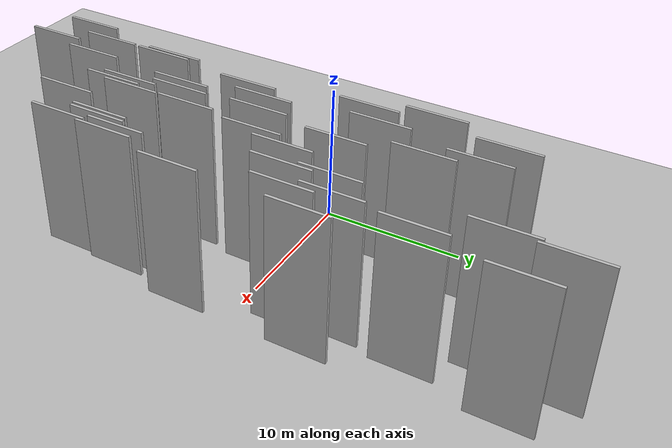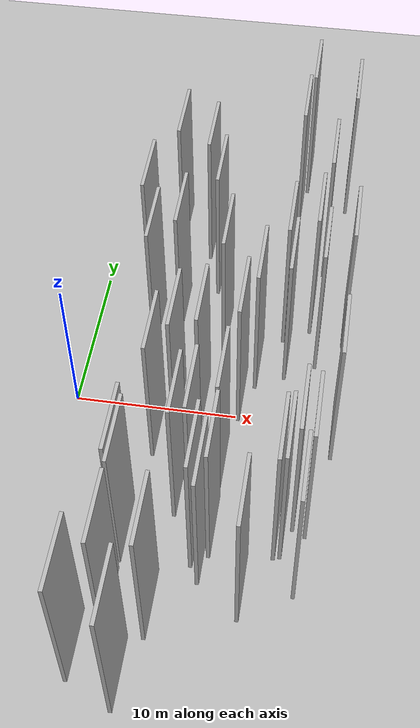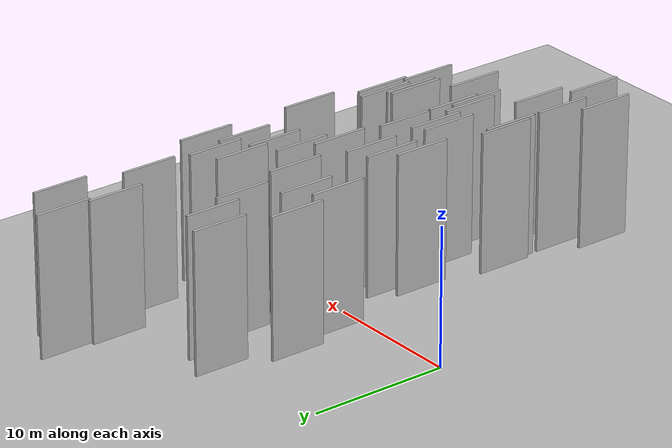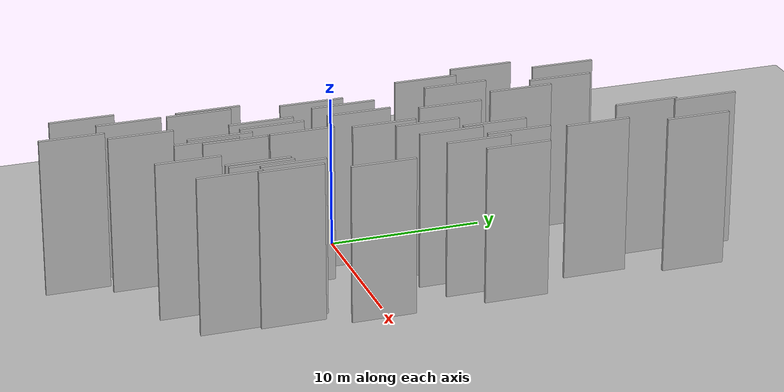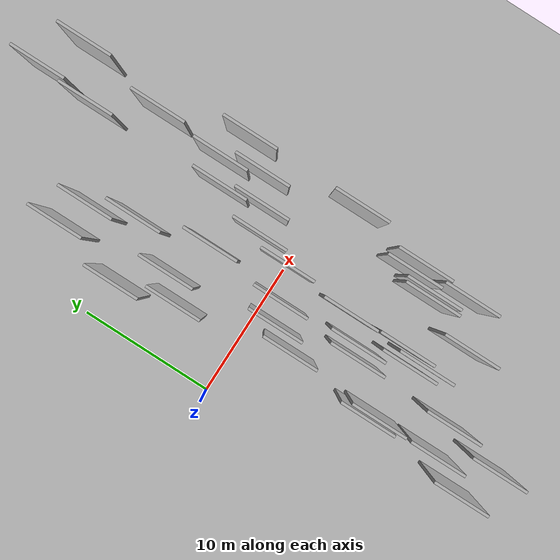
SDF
<?xml version="1.0" encoding="utf-8"?>

<sdf version="1.6">

   <world name="default">

      <gui fullscreen="0">

         <camera name="user_camera">

            <pose>-15 0 4.57585 0 0 0</pose>

            <view_controller>orbit</view_controller>

         </camera>

      </gui>

      <scene>

         <sky>

           <clouds>

             <speed>12</speed>

           </clouds>

         </sky>

         <ambient>0.4 0.4 0.4 1</ambient>

         <background>0.7 0.7 0.7 1</background>

         <shadows>1</shadows>

      </scene>

      <gravity>0 0 -9.8066</gravity>

      <magnetic_field>6e-06 2.3e-05 -4.2e-05</magnetic_field>

      <physics default="0" name="default_physics" type="ode">

         <ode>

            <solver>

               <type>quick</type>

               <iters>10</iters>

               <sor>1.0</sor>

               <use_dynamic_moi_rescaling>0</use_dynamic_moi_rescaling>

            </solver>

            <constraints>

               <cfm>0</cfm>

               <erp>0.2</erp>

               <contact_max_correcting_vel>100</contact_max_correcting_vel>

               <contact_surface_layer>0.001</contact_surface_layer>

            </constraints>

         </ode>

         <max_step_size>0.004</max_step_size>

         <real_time_factor>1</real_time_factor>

         <real_time_update_rate>250</real_time_update_rate>

      </physics>

      <light name="sun" type="directional">

         <cast_shadows>1</cast_shadows>

         <pose>0 0 10 0 0 0</pose>

         <diffuse>0.8 0.8 0.8 1</diffuse>

         <specular>0.2 0.2 0.2 1</specular>

         <attenuation>

            <range>1000</range>

            <constant>0.9</constant>

            <linear>0.01</linear>

            <quadratic>0.001</quadratic>

         </attenuation>

         <direction>-0.5 0.1 -0.9</direction>

      </light>

      <include>

         <name>ground_plane_1</name>

         <uri>model://HANNAS_ground_plane</uri>

         <pose>0 0 0  0 0 0</pose>

      </include>

      <include>

         <name>ground_plane_2</name>

         <uri>model://HANNAS_ground_plane</uri>

         <pose>100 0 0  0 0 0</pose>

      </include>

      <model name="HANNAS_wall_1">

         <static>1</static>

         <pose frame="">4.4890 4.7480 2.5 0.000000 0.000000 1.570796</pose>

         <link name="link">

            <pose frame="">0 0 5.00 0 0 0</pose>

            <collision name="collision">

               <geometry>

                  <box>

                     <size>4.00 0.2 10.00</size>

                  </box>

               </geometry>

               <max_contacts>10</max_contacts>

               <surface>

                  <contact>

                     <ode/>

                  </contact>

                  <bounce/>

                  <friction>

                     <torsional>

                        <ode/>

                     </torsional>

                     <ode/>

                  </friction>

               </surface>

            </collision>

            <visual name="visual">

               <cast_shadows>0</cast_shadows>

               <geometry>

                  <box>

                     <size>4.00 0.2 10.00</size>

                  </box>

               </geometry>

               <material>

                  <script>

                     <uri>model://HANNAS_wall/materials/scripts</uri>

                     <uri>model://HANNAS_wall/materials/textures</uri>

                     <name>vrc/HANNAS_wall</name>

                  </script>

               </material>

            </visual>

            <self_collide>0</self_collide>

            <enable_wind>0</enable_wind>

            <kinematic>0</kinematic>

         </link>

      </model>

      <model name="HANNAS_wall_2">

         <static>1</static>

         <pose frame="">5.8138 -3.0721 2.5 0.000000 0.000000 1.570796</pose>

         <link name="link">

            <pose frame="">0 0 5.00 0 0 0</pose>

            <collision name="collision">

               <geometry>

                  <box>

                     <size>4.00 0.2 10.00</size>

                  </box>

               </geometry>

               <max_contacts>10</max_contacts>

               <surface>

                  <contact>

                     <ode/>

                  </contact>

                  <bounce/>

                  <friction>

                     <torsional>

                        <ode/>

                     </torsional>

                     <ode/>

                  </friction>

               </surface>

            </collision>

            <visual name="visual">

               <cast_shadows>0</cast_shadows>

               <geometry>

                  <box>

                     <size>4.00 0.2 10.00</size>

                  </box>

               </geometry>

               <material>

                  <script>

                     <uri>model://HANNAS_wall/materials/scripts</uri>

                     <uri>model://HANNAS_wall/materials/textures</uri>

                     <name>vrc/HANNAS_wall</name>

                  </script>

               </material>

            </visual>

            <self_collide>0</self_collide>

            <enable_wind>0</enable_wind>

            <kinematic>0</kinematic>

         </link>

      </model>

      <model name="HANNAS_wall_3">

         <static>1</static>

         <pose frame="">14.3263 -6.8433 2.5 0.000000 0.000000 1.570796</pose>

         <link name="link">

            <pose frame="">0 0 5.00 0 0 0</pose>

            <collision name="collision">

               <geometry>

                  <box>

                     <size>4.00 0.2 10.00</size>

                  </box>

               </geometry>

               <max_contacts>10</max_contacts>

               <surface>

                  <contact>

                     <ode/>

                  </contact>

                  <bounce/>

                  <friction>

                     <torsional>

                        <ode/>

                     </torsional>

                     <ode/>

                  </friction>

               </surface>

            </collision>

            <visual name="visual">

               <cast_shadows>0</cast_shadows>

               <geometry>

                  <box>

                     <size>4.00 0.2 10.00</size>

                  </box>

               </geometry>

               <material>

                  <script>

                     <uri>model://HANNAS_wall/materials/scripts</uri>

                     <uri>model://HANNAS_wall/materials/textures</uri>

                     <name>vrc/HANNAS_wall</name>

                  </script>

               </material>

            </visual>

            <self_collide>0</self_collide>

            <enable_wind>0</enable_wind>

            <kinematic>0</kinematic>

         </link>

      </model>

      <model name="HANNAS_wall_4">

         <static>1</static>

         <pose frame="">6.8269 12.7532 2.5 0.000000 0.000000 1.570796</pose>

         <link name="link">

            <pose frame="">0 0 5.00 0 0 0</pose>

            <collision name="collision">

               <geometry>

                  <box>

                     <size>4.00 0.2 10.00</size>

                  </box>

               </geometry>

               <max_contacts>10</max_contacts>

               <surface>

                  <contact>

                     <ode/>

                  </contact>

                  <bounce/>

                  <friction>

                     <torsional>

                        <ode/>

                     </torsional>

                     <ode/>

                  </friction>

               </surface>

            </collision>

            <visual name="visual">

               <cast_shadows>0</cast_shadows>

               <geometry>

                  <box>

                     <size>4.00 0.2 10.00</size>

                  </box>

               </geometry>

               <material>

                  <script>

                     <uri>model://HANNAS_wall/materials/scripts</uri>

                     <uri>model://HANNAS_wall/materials/textures</uri>

                     <name>vrc/HANNAS_wall</name>

                  </script>

               </material>

            </visual>

            <self_collide>0</self_collide>

            <enable_wind>0</enable_wind>

            <kinematic>0</kinematic>

         </link>

      </model>

      <model name="HANNAS_wall_5">

         <static>1</static>

         <pose frame="">5.8905 6.1827 2.5 0.000000 0.000000 1.570796</pose>

         <link name="link">

            <pose frame="">0 0 5.00 0 0 0</pose>

            <collision name="collision">

               <geometry>

                  <box>

                     <size>4.00 0.2 10.00</size>

                  </box>

               </geometry>

               <max_contacts>10</max_contacts>

               <surface>

                  <contact>

                     <ode/>

                  </contact>

                  <bounce/>

                  <friction>

                     <torsional>

                        <ode/>

                     </torsional>

                     <ode/>

                  </friction>

               </surface>

            </collision>

            <visual name="visual">

               <cast_shadows>0</cast_shadows>

               <geometry>

                  <box>

                     <size>4.00 0.2 10.00</size>

                  </box>

               </geometry>

               <material>

                  <script>

                     <uri>model://HANNAS_wall/materials/scripts</uri>

                     <uri>model://HANNAS_wall/materials/textures</uri>

                     <name>vrc/HANNAS_wall</name>

                  </script>

               </material>

            </visual>

            <self_collide>0</self_collide>

            <enable_wind>0</enable_wind>

            <kinematic>0</kinematic>

         </link>

      </model>

      <model name="HANNAS_wall_6">

         <static>1</static>

         <pose frame="">11.0642 2.5485 2.5 0.000000 0.000000 1.570796</pose>

         <link name="link">

            <pose frame="">0 0 5.00 0 0 0</pose>

            <collision name="collision">

               <geometry>

                  <box>

                     <size>4.00 0.2 10.00</size>

                  </box>

               </geometry>

               <max_contacts>10</max_contacts>

               <surface>

                  <contact>

                     <ode/>

                  </contact>

                  <bounce/>

                  <friction>

                     <torsional>

                        <ode/>

                     </torsional>

                     <ode/>

                  </friction>

               </surface>

            </collision>

            <visual name="visual">

               <cast_shadows>0</cast_shadows>

               <geometry>

                  <box>

                     <size>4.00 0.2 10.00</size>

                  </box>

               </geometry>

               <material>

                  <script>

                     <uri>model://HANNAS_wall/materials/scripts</uri>

                     <uri>model://HANNAS_wall/materials/textures</uri>

                     <name>vrc/HANNAS_wall</name>

                  </script>

               </material>

            </visual>

            <self_collide>0</self_collide>

            <enable_wind>0</enable_wind>

            <kinematic>0</kinematic>

         </link>

      </model>

      <model name="HANNAS_wall_7">

         <static>1</static>

         <pose frame="">7.4055 -14.1734 2.5 0.000000 0.000000 1.570796</pose>

         <link name="link">

            <pose frame="">0 0 5.00 0 0 0</pose>

            <collision name="collision">

               <geometry>

                  <box>

                     <size>4.00 0.2 10.00</size>

                  </box>

               </geometry>

               <max_contacts>10</max_contacts>

               <surface>

                  <contact>

                     <ode/>

                  </contact>

                  <bounce/>

                  <friction>

                     <torsional>

                        <ode/>

                     </torsional>

                     <ode/>

                  </friction>

               </surface>

            </collision>

            <visual name="visual">

               <cast_shadows>0</cast_shadows>

               <geometry>

                  <box>

                     <size>4.00 0.2 10.00</size>

                  </box>

               </geometry>

               <material>

                  <script>

                     <uri>model://HANNAS_wall/materials/scripts</uri>

                     <uri>model://HANNAS_wall/materials/textures</uri>

                     <name>vrc/HANNAS_wall</name>

                  </script>

               </material>

            </visual>

            <self_collide>0</self_collide>

            <enable_wind>0</enable_wind>

            <kinematic>0</kinematic>

         </link>

      </model>

      <model name="HANNAS_wall_8">

         <static>1</static>

         <pose frame="">4.8230 13.7067 2.5 0.000000 0.000000 1.570796</pose>

         <link name="link">

            <pose frame="">0 0 5.00 0 0 0</pose>

            <collision name="collision">

               <geometry>

                  <box>

                     <size>4.00 0.2 10.00</size>

                  </box>

               </geometry>

               <max_contacts>10</max_contacts>

               <surface>

                  <contact>

                     <ode/>

                  </contact>

                  <bounce/>

                  <friction>

                     <torsional>

                        <ode/>

                     </torsional>

                     <ode/>

                  </friction>

               </surface>

            </collision>

            <visual name="visual">

               <cast_shadows>0</cast_shadows>

               <geometry>

                  <box>

                     <size>4.00 0.2 10.00</size>

                  </box>

               </geometry>

               <material>

                  <script>

                     <uri>model://HANNAS_wall/materials/scripts</uri>

                     <uri>model://HANNAS_wall/materials/textures</uri>

                     <name>vrc/HANNAS_wall</name>

                  </script>

               </material>

            </visual>

            <self_collide>0</self_collide>

            <enable_wind>0</enable_wind>

            <kinematic>0</kinematic>

         </link>

      </model>

      <model name="HANNAS_wall_9">

         <static>1</static>

         <pose frame="">9.6446 -10.7321 2.5 0.000000 0.000000 1.570796</pose>

         <link name="link">

            <pose frame="">0 0 5.00 0 0 0</pose>

            <collision name="collision">

               <geometry>

                  <box>

                     <size>4.00 0.2 10.00</size>

                  </box>

               </geometry>

               <max_contacts>10</max_contacts>

               <surface>

                  <contact>

                     <ode/>

                  </contact>

                  <bounce/>

                  <friction>

                     <torsional>

                        <ode/>

                     </torsional>

                     <ode/>

                  </friction>

               </surface>

            </collision>

            <visual name="visual">

               <cast_shadows>0</cast_shadows>

               <geometry>

                  <box>

                     <size>4.00 0.2 10.00</size>

                  </box>

               </geometry>

               <material>

                  <script>

                     <uri>model://HANNAS_wall/materials/scripts</uri>

                     <uri>model://HANNAS_wall/materials/textures</uri>

                     <name>vrc/HANNAS_wall</name>

                  </script>

               </material>

            </visual>

            <self_collide>0</self_collide>

            <enable_wind>0</enable_wind>

            <kinematic>0</kinematic>

         </link>

      </model>

      <model name="HANNAS_wall_10">

         <static>1</static>

         <pose frame="">13.9346 7.2970 2.5 0.000000 0.000000 1.570796</pose>

         <link name="link">

            <pose frame="">0 0 5.00 0 0 0</pose>

            <collision name="collision">

               <geometry>

                  <box>

                     <size>4.00 0.2 10.00</size>

                  </box>

               </geometry>

               <max_contacts>10</max_contacts>

               <surface>

                  <contact>

                     <ode/>

                  </contact>

                  <bounce/>

                  <friction>

                     <torsional>

                        <ode/>

                     </torsional>

                     <ode/>

                  </friction>

               </surface>

            </collision>

            <visual name="visual">

               <cast_shadows>0</cast_shadows>

               <geometry>

                  <box>

                     <size>4.00 0.2 10.00</size>

                  </box>

               </geometry>

               <material>

                  <script>

                     <uri>model://HANNAS_wall/materials/scripts</uri>

                     <uri>model://HANNAS_wall/materials/textures</uri>

                     <name>vrc/HANNAS_wall</name>

                  </script>

               </material>

            </visual>

            <self_collide>0</self_collide>

            <enable_wind>0</enable_wind>

            <kinematic>0</kinematic>

         </link>

      </model>

      <model name="HANNAS_wall_11">

         <static>1</static>

         <pose frame="">5.2571 -14.3523 2.5 0.000000 0.000000 1.570796</pose>

         <link name="link">

            <pose frame="">0 0 5.00 0 0 0</pose>

            <collision name="collision">

               <geometry>

                  <box>

                     <size>4.00 0.2 10.00</size>

                  </box>

               </geometry>

               <max_contacts>10</max_contacts>

               <surface>

                  <contact>

                     <ode/>

                  </contact>

                  <bounce/>

                  <friction>

                     <torsional>

                        <ode/>

                     </torsional>

                     <ode/>

                  </friction>

               </surface>

            </collision>

            <visual name="visual">

               <cast_shadows>0</cast_shadows>

               <geometry>

                  <box>

                     <size>4.00 0.2 10.00</size>

                  </box>

               </geometry>

               <material>

                  <script>

                     <uri>model://HANNAS_wall/materials/scripts</uri>

                     <uri>model://HANNAS_wall/materials/textures</uri>

                     <name>vrc/HANNAS_wall</name>

                  </script>

               </material>

            </visual>

            <self_collide>0</self_collide>

            <enable_wind>0</enable_wind>

            <kinematic>0</kinematic>

         </link>

      </model>

      <model name="HANNAS_wall_12">

         <static>1</static>

         <pose frame="">12.3624 6.3493 2.5 0.000000 0.000000 1.570796</pose>

         <link name="link">

            <pose frame="">0 0 5.00 0 0 0</pose>

            <collision name="collision">

               <geometry>

                  <box>

                     <size>4.00 0.2 10.00</size>

                  </box>

               </geometry>

               <max_contacts>10</max_contacts>

               <surface>

                  <contact>

                     <ode/>

                  </contact>

                  <bounce/>

                  <friction>

                     <torsional>

                        <ode/>

                     </torsional>

                     <ode/>

                  </friction>

               </surface>

            </collision>

            <visual name="visual">

               <cast_shadows>0</cast_shadows>

               <geometry>

                  <box>

                     <size>4.00 0.2 10.00</size>

                  </box>

               </geometry>

               <material>

                  <script>

                     <uri>model://HANNAS_wall/materials/scripts</uri>

                     <uri>model://HANNAS_wall/materials/textures</uri>

                     <name>vrc/HANNAS_wall</name>

                  </script>

               </material>

            </visual>

            <self_collide>0</self_collide>

            <enable_wind>0</enable_wind>

            <kinematic>0</kinematic>

         </link>

      </model>

      <model name="HANNAS_wall_13">

         <static>1</static>

         <pose frame="">12.0133 -12.5285 2.5 0.000000 0.000000 1.570796</pose>

         <link name="link">

            <pose frame="">0 0 5.00 0 0 0</pose>

            <collision name="collision">

               <geometry>

                  <box>

                     <size>4.00 0.2 10.00</size>

                  </box>

               </geometry>

               <max_contacts>10</max_contacts>

               <surface>

                  <contact>

                     <ode/>

                  </contact>

                  <bounce/>

                  <friction>

                     <torsional>

                        <ode/>

                     </torsional>

                     <ode/>

                  </friction>

               </surface>

            </collision>

            <visual name="visual">

               <cast_shadows>0</cast_shadows>

               <geometry>

                  <box>

                     <size>4.00 0.2 10.00</size>

                  </box>

               </geometry>

               <material>

                  <script>

                     <uri>model://HANNAS_wall/materials/scripts</uri>

                     <uri>model://HANNAS_wall/materials/textures</uri>

                     <name>vrc/HANNAS_wall</name>

                  </script>

               </material>

            </visual>

            <self_collide>0</self_collide>

            <enable_wind>0</enable_wind>

            <kinematic>0</kinematic>

         </link>

      </model>

      <model name="HANNAS_wall_14">

         <static>1</static>

         <pose frame="">14.5094 4.5498 2.5 0.000000 0.000000 1.570796</pose>

         <link name="link">

            <pose frame="">0 0 5.00 0 0 0</pose>

            <collision name="collision">

               <geometry>

                  <box>

                     <size>4.00 0.2 10.00</size>

                  </box>

               </geometry>

               <max_contacts>10</max_contacts>

               <surface>

                  <contact>

                     <ode/>

                  </contact>

                  <bounce/>

                  <friction>

                     <torsional>

                        <ode/>

                     </torsional>

                     <ode/>

                  </friction>

               </surface>

            </collision>

            <visual name="visual">

               <cast_shadows>0</cast_shadows>

               <geometry>

                  <box>

                     <size>4.00 0.2 10.00</size>

                  </box>

               </geometry>

               <material>

                  <script>

                     <uri>model://HANNAS_wall/materials/scripts</uri>

                     <uri>model://HANNAS_wall/materials/textures</uri>

                     <name>vrc/HANNAS_wall</name>

                  </script>

               </material>

            </visual>

            <self_collide>0</self_collide>

            <enable_wind>0</enable_wind>

            <kinematic>0</kinematic>

         </link>

      </model>

      <model name="HANNAS_wall_15">

         <static>1</static>

         <pose frame="">16.0511 6.4566 2.5 0.000000 0.000000 1.570796</pose>

         <link name="link">

            <pose frame="">0 0 5.00 0 0 0</pose>

            <collision name="collision">

               <geometry>

                  <box>

                     <size>4.00 0.2 10.00</size>

                  </box>

               </geometry>

               <max_contacts>10</max_contacts>

               <surface>

                  <contact>

                     <ode/>

                  </contact>

                  <bounce/>

                  <friction>

                     <torsional>

                        <ode/>

                     </torsional>

                     <ode/>

                  </friction>

               </surface>

            </collision>

            <visual name="visual">

               <cast_shadows>0</cast_shadows>

               <geometry>

                  <box>

                     <size>4.00 0.2 10.00</size>

                  </box>

               </geometry>

               <material>

                  <script>

                     <uri>model://HANNAS_wall/materials/scripts</uri>

                     <uri>model://HANNAS_wall/materials/textures</uri>

                     <name>vrc/HANNAS_wall</name>

                  </script>

               </material>

            </visual>

            <self_collide>0</self_collide>

            <enable_wind>0</enable_wind>

            <kinematic>0</kinematic>

         </link>

      </model>

      <model name="HANNAS_wall_16">

         <static>1</static>

         <pose frame="">6.4888 -18.1323 2.5 0.000000 0.000000 1.570796</pose>

         <link name="link">

            <pose frame="">0 0 5.00 0 0 0</pose>

            <collision name="collision">

               <geometry>

                  <box>

                     <size>4.00 0.2 10.00</size>

                  </box>

               </geometry>

               <max_contacts>10</max_contacts>

               <surface>

                  <contact>

                     <ode/>

                  </contact>

                  <bounce/>

                  <friction>

                     <torsional>

                        <ode/>

                     </torsional>

                     <ode/>

                  </friction>

               </surface>

            </collision>

            <visual name="visual">

               <cast_shadows>0</cast_shadows>

               <geometry>

                  <box>

                     <size>4.00 0.2 10.00</size>

                  </box>

               </geometry>

               <material>

                  <script>

                     <uri>model://HANNAS_wall/materials/scripts</uri>

                     <uri>model://HANNAS_wall/materials/textures</uri>

                     <name>vrc/HANNAS_wall</name>

                  </script>

               </material>

            </visual>

            <self_collide>0</self_collide>

            <enable_wind>0</enable_wind>

            <kinematic>0</kinematic>

         </link>

      </model>

      <model name="HANNAS_wall_17">

         <static>1</static>

         <pose frame="">3.5200 8.7308 2.5 0.000000 0.000000 1.570796</pose>

         <link name="link">

            <pose frame="">0 0 5.00 0 0 0</pose>

            <collision name="collision">

               <geometry>

                  <box>

                     <size>4.00 0.2 10.00</size>

                  </box>

               </geometry>

               <max_contacts>10</max_contacts>

               <surface>

                  <contact>

                     <ode/>

                  </contact>

                  <bounce/>

                  <friction>

                     <torsional>

                        <ode/>

                     </torsional>

                     <ode/>

                  </friction>

               </surface>

            </collision>

            <visual name="visual">

               <cast_shadows>0</cast_shadows>

               <geometry>

                  <box>

                     <size>4.00 0.2 10.00</size>

                  </box>

               </geometry>

               <material>

                  <script>

                     <uri>model://HANNAS_wall/materials/scripts</uri>

                     <uri>model://HANNAS_wall/materials/textures</uri>

                     <name>vrc/HANNAS_wall</name>

                  </script>

               </material>

            </visual>

            <self_collide>0</self_collide>

            <enable_wind>0</enable_wind>

            <kinematic>0</kinematic>

         </link>

      </model>

      <model name="HANNAS_wall_18">

         <static>1</static>

         <pose frame="">14.7701 -10.8193 2.5 0.000000 0.000000 1.570796</pose>

         <link name="link">

            <pose frame="">0 0 5.00 0 0 0</pose>

            <collision name="collision">

               <geometry>

                  <box>

                     <size>4.00 0.2 10.00</size>

                  </box>

               </geometry>

               <max_contacts>10</max_contacts>

               <surface>

                  <contact>

                     <ode/>

                  </contact>

                  <bounce/>

                  <friction>

                     <torsional>

                        <ode/>

                     </torsional>

                     <ode/>

                  </friction>

               </surface>

            </collision>

            <visual name="visual">

               <cast_shadows>0</cast_shadows>

               <geometry>

                  <box>

                     <size>4.00 0.2 10.00</size>

                  </box>

               </geometry>

               <material>

                  <script>

                     <uri>model://HANNAS_wall/materials/scripts</uri>

                     <uri>model://HANNAS_wall/materials/textures</uri>

                     <name>vrc/HANNAS_wall</name>

                  </script>

               </material>

            </visual>

            <self_collide>0</self_collide>

            <enable_wind>0</enable_wind>

            <kinematic>0</kinematic>

         </link>

      </model>

      <model name="HANNAS_wall_19">

         <static>1</static>

         <pose frame="">13.4697 -8.7221 2.5 0.000000 0.000000 1.570796</pose>

         <link name="link">

            <pose frame="">0 0 5.00 0 0 0</pose>

            <collision name="collision">

               <geometry>

                  <box>

                     <size>4.00 0.2 10.00</size>

                  </box>

               </geometry>

               <max_contacts>10</max_contacts>

               <surface>

                  <contact>

                     <ode/>

                  </contact>

                  <bounce/>

                  <friction>

                     <torsional>

                        <ode/>

                     </torsional>

                     <ode/>

                  </friction>

               </surface>

            </collision>

            <visual name="visual">

               <cast_shadows>0</cast_shadows>

               <geometry>

                  <box>

                     <size>4.00 0.2 10.00</size>

                  </box>

               </geometry>

               <material>

                  <script>

                     <uri>model://HANNAS_wall/materials/scripts</uri>

                     <uri>model://HANNAS_wall/materials/textures</uri>

                     <name>vrc/HANNAS_wall</name>

                  </script>

               </material>

            </visual>

            <self_collide>0</self_collide>

            <enable_wind>0</enable_wind>

            <kinematic>0</kinematic>

         </link>

      </model>

      <model name="HANNAS_wall_20">

         <static>1</static>

         <pose frame="">7.7355 -6.8318 2.5 0.000000 0.000000 1.570796</pose>

         <link name="link">

            <pose frame="">0 0 5.00 0 0 0</pose>

            <collision name="collision">

               <geometry>

                  <box>

                     <size>4.00 0.2 10.00</size>

                  </box>

               </geometry>

               <max_contacts>10</max_contacts>

               <surface>

                  <contact>

                     <ode/>

                  </contact>

                  <bounce/>

                  <friction>

                     <torsional>

                        <ode/>

                     </torsional>

                     <ode/>

                  </friction>

               </surface>

            </collision>

            <visual name="visual">

               <cast_shadows>0</cast_shadows>

               <geometry>

                  <box>

                     <size>4.00 0.2 10.00</size>

                  </box>

               </geometry>

               <material>

                  <script>

                     <uri>model://HANNAS_wall/materials/scripts</uri>

                     <uri>model://HANNAS_wall/materials/textures</uri>

                     <name>vrc/HANNAS_wall</name>

                  </script>

               </material>

            </visual>

            <self_collide>0</self_collide>

            <enable_wind>0</enable_wind>

            <kinematic>0</kinematic>

         </link>

      </model>

      <model name="HANNAS_wall_21">

         <static>1</static>

         <pose frame="">3.9329 -16.9139 2.5 0.000000 0.000000 1.570796</pose>

         <link name="link">

            <pose frame="">0 0 5.00 0 0 0</pose>

            <collision name="collision">

               <geometry>

                  <box>

                     <size>4.00 0.2 10.00</size>

                  </box>

               </geometry>

               <max_contacts>10</max_contacts>

               <surface>

                  <contact>

                     <ode/>

                  </contact>

                  <bounce/>

                  <friction>

                     <torsional>

                        <ode/>

                     </torsional>

                     <ode/>

                  </friction>

               </surface>

            </collision>

            <visual name="visual">

               <cast_shadows>0</cast_shadows>

               <geometry>

                  <box>

                     <size>4.00 0.2 10.00</size>

                  </box>

               </geometry>

               <material>

                  <script>

                     <uri>model://HANNAS_wall/materials/scripts</uri>

                     <uri>model://HANNAS_wall/materials/textures</uri>

                     <name>vrc/HANNAS_wall</name>

                  </script>

               </material>

            </visual>

            <self_collide>0</self_collide>

            <enable_wind>0</enable_wind>

            <kinematic>0</kinematic>

         </link>

      </model>

      <model name="HANNAS_wall_22">

         <static>1</static>

         <pose frame="">9.9276 -4.9561 2.5 0.000000 0.000000 1.570796</pose>

         <link name="link">

            <pose frame="">0 0 5.00 0 0 0</pose>

            <collision name="collision">

               <geometry>

                  <box>

                     <size>4.00 0.2 10.00</size>

                  </box>

               </geometry>

               <max_contacts>10</max_contacts>

               <surface>

                  <contact>

                     <ode/>

                  </contact>

                  <bounce/>

                  <friction>

                     <torsional>

                        <ode/>

                     </torsional>

                     <ode/>

                  </friction>

               </surface>

            </collision>

            <visual name="visual">

               <cast_shadows>0</cast_shadows>

               <geometry>

                  <box>

                     <size>4.00 0.2 10.00</size>

                  </box>

               </geometry>

               <material>

                  <script>

                     <uri>model://HANNAS_wall/materials/scripts</uri>

                     <uri>model://HANNAS_wall/materials/textures</uri>

                     <name>vrc/HANNAS_wall</name>

                  </script>

               </material>

            </visual>

            <self_collide>0</self_collide>

            <enable_wind>0</enable_wind>

            <kinematic>0</kinematic>

         </link>

      </model>

      <model name="HANNAS_wall_23">

         <static>1</static>

         <pose frame="">8.8322 4.7874 2.5 0.000000 0.000000 1.570796</pose>

         <link name="link">

            <pose frame="">0 0 5.00 0 0 0</pose>

            <collision name="collision">

               <geometry>

                  <box>

                     <size>4.00 0.2 10.00</size>

                  </box>

               </geometry>

               <max_contacts>10</max_contacts>

               <surface>

                  <contact>

                     <ode/>

                  </contact>

                  <bounce/>

                  <friction>

                     <torsional>

                        <ode/>

                     </torsional>

                     <ode/>

                  </friction>

               </surface>

            </collision>

            <visual name="visual">

               <cast_shadows>0</cast_shadows>

               <geometry>

                  <box>

                     <size>4.00 0.2 10.00</size>

                  </box>

               </geometry>

               <material>

                  <script>

                     <uri>model://HANNAS_wall/materials/scripts</uri>

                     <uri>model://HANNAS_wall/materials/textures</uri>

                     <name>vrc/HANNAS_wall</name>

                  </script>

               </material>

            </visual>

            <self_collide>0</self_collide>

            <enable_wind>0</enable_wind>

            <kinematic>0</kinematic>

         </link>

      </model>

      <model name="HANNAS_wall_24">

         <static>1</static>

         <pose frame="">7.7628 9.7902 2.5 0.000000 0.000000 1.570796</pose>

         <link name="link">

            <pose frame="">0 0 5.00 0 0 0</pose>

            <collision name="collision">

               <geometry>

                  <box>

                     <size>4.00 0.2 10.00</size>

                  </box>

               </geometry>

               <max_contacts>10</max_contacts>

               <surface>

                  <contact>

                     <ode/>

                  </contact>

                  <bounce/>

                  <friction>

                     <torsional>

                        <ode/>

                     </torsional>

                     <ode/>

                  </friction>

               </surface>

            </collision>

            <visual name="visual">

               <cast_shadows>0</cast_shadows>

               <geometry>

                  <box>

                     <size>4.00 0.2 10.00</size>

                  </box>

               </geometry>

               <material>

                  <script>

                     <uri>model://HANNAS_wall/materials/scripts</uri>

                     <uri>model://HANNAS_wall/materials/textures</uri>

                     <name>vrc/HANNAS_wall</name>

                  </script>

               </material>

            </visual>

            <self_collide>0</self_collide>

            <enable_wind>0</enable_wind>

            <kinematic>0</kinematic>

         </link>

      </model>

      <model name="HANNAS_wall_25">

         <static>1</static>

         <pose frame="">12.7371 3.4631 2.5 0.000000 0.000000 1.570796</pose>

         <link name="link">

            <pose frame="">0 0 5.00 0 0 0</pose>

            <collision name="collision">

               <geometry>

                  <box>

                     <size>4.00 0.2 10.00</size>

                  </box>

               </geometry>

               <max_contacts>10</max_contacts>

               <surface>

                  <contact>

                     <ode/>

                  </contact>

                  <bounce/>

                  <friction>

                     <torsional>

                        <ode/>

                     </torsional>

                     <ode/>

                  </friction>

               </surface>

            </collision>

            <visual name="visual">

               <cast_shadows>0</cast_shadows>

               <geometry>

                  <box>

                     <size>4.00 0.2 10.00</size>

                  </box>

               </geometry>

               <material>

                  <script>

                     <uri>model://HANNAS_wall/materials/scripts</uri>

                     <uri>model://HANNAS_wall/materials/textures</uri>

                     <name>vrc/HANNAS_wall</name>

                  </script>

               </material>

            </visual>

            <self_collide>0</self_collide>

            <enable_wind>0</enable_wind>

            <kinematic>0</kinematic>

         </link>

      </model>

      <model name="HANNAS_wall_26">

         <static>1</static>

         <pose frame="">15.3584 18.2884 2.5 0.000000 0.000000 1.570796</pose>

         <link name="link">

            <pose frame="">0 0 5.00 0 0 0</pose>

            <collision name="collision">

               <geometry>

                  <box>

                     <size>4.00 0.2 10.00</size>

                  </box>

               </geometry>

               <max_contacts>10</max_contacts>

               <surface>

                  <contact>

                     <ode/>

                  </contact>

                  <bounce/>

                  <friction>

                     <torsional>

                        <ode/>

                     </torsional>

                     <ode/>

                  </friction>

               </surface>

            </collision>

            <visual name="visual">

               <cast_shadows>0</cast_shadows>

               <geometry>

                  <box>

                     <size>4.00 0.2 10.00</size>

                  </box>

               </geometry>

               <material>

                  <script>

                     <uri>model://HANNAS_wall/materials/scripts</uri>

                     <uri>model://HANNAS_wall/materials/textures</uri>

                     <name>vrc/HANNAS_wall</name>

                  </script>

               </material>

            </visual>

            <self_collide>0</self_collide>

            <enable_wind>0</enable_wind>

            <kinematic>0</kinematic>

         </link>

      </model>

      <model name="HANNAS_wall_27">

         <static>1</static>

         <pose frame="">15.0411 -7.1855 2.5 0.000000 0.000000 1.570796</pose>

         <link name="link">

            <pose frame="">0 0 5.00 0 0 0</pose>

            <collision name="collision">

               <geometry>

                  <box>

                     <size>4.00 0.2 10.00</size>

                  </box>

               </geometry>

               <max_contacts>10</max_contacts>

               <surface>

                  <contact>

                     <ode/>

                  </contact>

                  <bounce/>

                  <friction>

                     <torsional>

                        <ode/>

                     </torsional>

                     <ode/>

                  </friction>

               </surface>

            </collision>

            <visual name="visual">

               <cast_shadows>0</cast_shadows>

               <geometry>

                  <box>

                     <size>4.00 0.2 10.00</size>

                  </box>

               </geometry>

               <material>

                  <script>

                     <uri>model://HANNAS_wall/materials/scripts</uri>

                     <uri>model://HANNAS_wall/materials/textures</uri>

                     <name>vrc/HANNAS_wall</name>

                  </script>

               </material>

            </visual>

            <self_collide>0</self_collide>

            <enable_wind>0</enable_wind>

            <kinematic>0</kinematic>

         </link>

      </model>

      <model name="HANNAS_wall_28">

         <static>1</static>

         <pose frame="">12.2902 16.2253 2.5 0.000000 0.000000 1.570796</pose>

         <link name="link">

            <pose frame="">0 0 5.00 0 0 0</pose>

            <collision name="collision">

               <geometry>

                  <box>

                     <size>4.00 0.2 10.00</size>

                  </box>

               </geometry>

               <max_contacts>10</max_contacts>

               <surface>

                  <contact>

                     <ode/>

                  </contact>

                  <bounce/>

                  <friction>

                     <torsional>

                        <ode/>

                     </torsional>

                     <ode/>

                  </friction>

               </surface>

            </collision>

            <visual name="visual">

               <cast_shadows>0</cast_shadows>

               <geometry>

                  <box>

                     <size>4.00 0.2 10.00</size>

                  </box>

               </geometry>

               <material>

                  <script>

                     <uri>model://HANNAS_wall/materials/scripts</uri>

                     <uri>model://HANNAS_wall/materials/textures</uri>

                     <name>vrc/HANNAS_wall</name>

                  </script>

               </material>

            </visual>

            <self_collide>0</self_collide>

            <enable_wind>0</enable_wind>

            <kinematic>0</kinematic>

         </link>

      </model>

      <model name="HANNAS_wall_29">

         <static>1</static>

         <pose frame="">12.5958 19.9650 2.5 0.000000 0.000000 1.570796</pose>

         <link name="link">

            <pose frame="">0 0 5.00 0 0 0</pose>

            <collision name="collision">

               <geometry>

                  <box>

                     <size>4.00 0.2 10.00</size>

                  </box>

               </geometry>

               <max_contacts>10</max_contacts>

               <surface>

                  <contact>

                     <ode/>

                  </contact>

                  <bounce/>

                  <friction>

                     <torsional>

                        <ode/>

                     </torsional>

                     <ode/>

                  </friction>

               </surface>

            </collision>

            <visual name="visual">

               <cast_shadows>0</cast_shadows>

               <geometry>

                  <box>

                     <size>4.00 0.2 10.00</size>

                  </box>

               </geometry>

               <material>

                  <script>

                     <uri>model://HANNAS_wall/materials/scripts</uri>

                     <uri>model://HANNAS_wall/materials/textures</uri>

                     <name>vrc/HANNAS_wall</name>

                  </script>

               </material>

            </visual>

            <self_collide>0</self_collide>

            <enable_wind>0</enable_wind>

            <kinematic>0</kinematic>

         </link>

      </model>

      <model name="HANNAS_wall_30">

         <static>1</static>

         <pose frame="">9.9915 -9.0840 2.5 0.000000 0.000000 1.570796</pose>

         <link name="link">

            <pose frame="">0 0 5.00 0 0 0</pose>

            <collision name="collision">

               <geometry>

                  <box>

                     <size>4.00 0.2 10.00</size>

                  </box>

               </geometry>

               <max_contacts>10</max_contacts>

               <surface>

                  <contact>

                     <ode/>

                  </contact>

                  <bounce/>

                  <friction>

                     <torsional>

                        <ode/>

                     </torsional>

                     <ode/>

                  </friction>

               </surface>

            </collision>

            <visual name="visual">

               <cast_shadows>0</cast_shadows>

               <geometry>

                  <box>

                     <size>4.00 0.2 10.00</size>

                  </box>

               </geometry>

               <material>

                  <script>

                     <uri>model://HANNAS_wall/materials/scripts</uri>

                     <uri>model://HANNAS_wall/materials/textures</uri>

                     <name>vrc/HANNAS_wall</name>

                  </script>

               </material>

            </visual>

            <self_collide>0</self_collide>

            <enable_wind>0</enable_wind>

            <kinematic>0</kinematic>

         </link>

      </model>

      <model name="HANNAS_wall_31">

         <static>1</static>

         <pose frame="">5.2681 -10.0111 2.5 0.000000 0.000000 1.570796</pose>

         <link name="link">

            <pose frame="">0 0 5.00 0 0 0</pose>

            <collision name="collision">

               <geometry>

                  <box>

                     <size>4.00 0.2 10.00</size>

                  </box>

               </geometry>

               <max_contacts>10</max_contacts>

               <surface>

                  <contact>

                     <ode/>

                  </contact>

                  <bounce/>

                  <friction>

                     <torsional>

                        <ode/>

                     </torsional>

                     <ode/>

                  </friction>

               </surface>

            </collision>

            <visual name="visual">

               <cast_shadows>0</cast_shadows>

               <geometry>

                  <box>

                     <size>4.00 0.2 10.00</size>

                  </box>

               </geometry>

               <material>

                  <script>

                     <uri>model://HANNAS_wall/materials/scripts</uri>

                     <uri>model://HANNAS_wall/materials/textures</uri>

                     <name>vrc/HANNAS_wall</name>

                  </script>

               </material>

            </visual>

            <self_collide>0</self_collide>

            <enable_wind>0</enable_wind>

            <kinematic>0</kinematic>

         </link>

      </model>

      <model name="HANNAS_wall_32">

         <static>1</static>

         <pose frame="">8.5119 -6.3933 2.5 0.000000 0.000000 1.570796</pose>

         <link name="link">

            <pose frame="">0 0 5.00 0 0 0</pose>

            <collision name="collision">

               <geometry>

                  <box>

                     <size>4.00 0.2 10.00</size>

                  </box>

               </geometry>

               <max_contacts>10</max_contacts>

               <surface>

                  <contact>

                     <ode/>

                  </contact>

                  <bounce/>

                  <friction>

                     <torsional>

                        <ode/>

                     </torsional>

                     <ode/>

                  </friction>

               </surface>

            </collision>

            <visual name="visual">

               <cast_shadows>0</cast_shadows>

               <geometry>

                  <box>

                     <size>4.00 0.2 10.00</size>

                  </box>

               </geometry>

               <material>

                  <script>

                     <uri>model://HANNAS_wall/materials/scripts</uri>

                     <uri>model://HANNAS_wall/materials/textures</uri>

                     <name>vrc/HANNAS_wall</name>

                  </script>

               </material>

            </visual>

            <self_collide>0</self_collide>

            <enable_wind>0</enable_wind>

            <kinematic>0</kinematic>

         </link>

      </model>

      <model name="HANNAS_wall_33">

         <static>1</static>

         <pose frame="">15.9993 -1.8910 2.5 0.000000 0.000000 1.570796</pose>

         <link name="link">

            <pose frame="">0 0 5.00 0 0 0</pose>

            <collision name="collision">

               <geometry>

                  <box>

                     <size>4.00 0.2 10.00</size>

                  </box>

               </geometry>

               <max_contacts>10</max_contacts>

               <surface>

                  <contact>

                     <ode/>

                  </contact>

                  <bounce/>

                  <friction>

                     <torsional>

                        <ode/>

                     </torsional>

                     <ode/>

                  </friction>

               </surface>

            </collision>

            <visual name="visual">

               <cast_shadows>0</cast_shadows>

               <geometry>

                  <box>

                     <size>4.00 0.2 10.00</size>

                  </box>

               </geometry>

               <material>

                  <script>

                     <uri>model://HANNAS_wall/materials/scripts</uri>

                     <uri>model://HANNAS_wall/materials/textures</uri>

                     <name>vrc/HANNAS_wall</name>

                  </script>

               </material>

            </visual>

            <self_collide>0</self_collide>

            <enable_wind>0</enable_wind>

            <kinematic>0</kinematic>

         </link>

      </model>

      <model name="HANNAS_wall_34">

         <static>1</static>

         <pose frame="">10.3719 0.0462 2.5 0.000000 0.000000 1.570796</pose>

         <link name="link">

            <pose frame="">0 0 5.00 0 0 0</pose>

            <collision name="collision">

               <geometry>

                  <box>

                     <size>4.00 0.2 10.00</size>

                  </box>

               </geometry>

               <max_contacts>10</max_contacts>

               <surface>

                  <contact>

                     <ode/>

                  </contact>

                  <bounce/>

                  <friction>

                     <torsional>

                        <ode/>

                     </torsional>

                     <ode/>

                  </friction>

               </surface>

            </collision>

            <visual name="visual">

               <cast_shadows>0</cast_shadows>

               <geometry>

                  <box>

                     <size>4.00 0.2 10.00</size>

                  </box>

               </geometry>

               <material>

                  <script>

                     <uri>model://HANNAS_wall/materials/scripts</uri>

                     <uri>model://HANNAS_wall/materials/textures</uri>

                     <name>vrc/HANNAS_wall</name>

                  </script>

               </material>

            </visual>

            <self_collide>0</self_collide>

            <enable_wind>0</enable_wind>

            <kinematic>0</kinematic>

         </link>

      </model>

      <model name="HANNAS_wall_35">

         <static>1</static>

         <pose frame="">14.3446 12.1935 2.5 0.000000 0.000000 1.570796</pose>

         <link name="link">

            <pose frame="">0 0 5.00 0 0 0</pose>

            <collision name="collision">

               <geometry>

                  <box>

                     <size>4.00 0.2 10.00</size>

                  </box>

               </geometry>

               <max_contacts>10</max_contacts>

               <surface>

                  <contact>

                     <ode/>

                  </contact>

                  <bounce/>

                  <friction>

                     <torsional>

                        <ode/>

                     </torsional>

                     <ode/>

                  </friction>

               </surface>

            </collision>

            <visual name="visual">

               <cast_shadows>0</cast_shadows>

               <geometry>

                  <box>

                     <size>4.00 0.2 10.00</size>

                  </box>

               </geometry>

               <material>

                  <script>

                     <uri>model://HANNAS_wall/materials/scripts</uri>

                     <uri>model://HANNAS_wall/materials/textures</uri>

                     <name>vrc/HANNAS_wall</name>

                  </script>

               </material>

            </visual>

            <self_collide>0</self_collide>

            <enable_wind>0</enable_wind>

            <kinematic>0</kinematic>

         </link>

      </model>

      <model name="HANNAS_wall_36">

         <static>1</static>

         <pose frame="">13.8182 -8.6065 2.5 0.000000 0.000000 1.570796</pose>

         <link name="link">

            <pose frame="">0 0 5.00 0 0 0</pose>

            <collision name="collision">

               <geometry>

                  <box>

                     <size>4.00 0.2 10.00</size>

                  </box>

               </geometry>

               <max_contacts>10</max_contacts>

               <surface>

                  <contact>

                     <ode/>

                  </contact>

                  <bounce/>

                  <friction>

                     <torsional>

                        <ode/>

                     </torsional>

                     <ode/>

                  </friction>

               </surface>

            </collision>

            <visual name="visual">

               <cast_shadows>0</cast_shadows>

               <geometry>

                  <box>

                     <size>4.00 0.2 10.00</size>

                  </box>

               </geometry>

               <material>

                  <script>

                     <uri>model://HANNAS_wall/materials/scripts</uri>

                     <uri>model://HANNAS_wall/materials/textures</uri>

                     <name>vrc/HANNAS_wall</name>

                  </script>

               </material>

            </visual>

            <self_collide>0</self_collide>

            <enable_wind>0</enable_wind>

            <kinematic>0</kinematic>

         </link>

      </model>

      <model name="HANNAS_wall_37">

         <static>1</static>

         <pose frame="">6.7677 -1.3553 2.5 0.000000 0.000000 1.570796</pose>

         <link name="link">

            <pose frame="">0 0 5.00 0 0 0</pose>

            <collision name="collision">

               <geometry>

                  <box>

                     <size>4.00 0.2 10.00</size>

                  </box>

               </geometry>

               <max_contacts>10</max_contacts>

               <surface>

                  <contact>

                     <ode/>

                  </contact>

                  <bounce/>

                  <friction>

                     <torsional>

                        <ode/>

                     </torsional>

                     <ode/>

                  </friction>

               </surface>

            </collision>

            <visual name="visual">

               <cast_shadows>0</cast_shadows>

               <geometry>

                  <box>

                     <size>4.00 0.2 10.00</size>

                  </box>

               </geometry>

               <material>

                  <script>

                     <uri>model://HANNAS_wall/materials/scripts</uri>

                     <uri>model://HANNAS_wall/materials/textures</uri>

                     <name>vrc/HANNAS_wall</name>

                  </script>

               </material>

            </visual>

            <self_collide>0</self_collide>

            <enable_wind>0</enable_wind>

            <kinematic>0</kinematic>

         </link>

      </model>

      <model name="HANNAS_wall_38">

         <static>1</static>

         <pose frame="">8.1975 -0.8304 2.5 0.000000 0.000000 1.570796</pose>

         <link name="link">

            <pose frame="">0 0 5.00 0 0 0</pose>

            <collision name="collision">

               <geometry>

                  <box>

                     <size>4.00 0.2 10.00</size>

                  </box>

               </geometry>

               <max_contacts>10</max_contacts>

               <surface>

                  <contact>

                     <ode/>

                  </contact>

                  <bounce/>

                  <friction>

                     <torsional>

                        <ode/>

                     </torsional>

                     <ode/>

                  </friction>

               </surface>

            </collision>

            <visual name="visual">

               <cast_shadows>0</cast_shadows>

               <geometry>

                  <box>

                     <size>4.00 0.2 10.00</size>

                  </box>

               </geometry>

               <material>

                  <script>

                     <uri>model://HANNAS_wall/materials/scripts</uri>

                     <uri>model://HANNAS_wall/materials/textures</uri>

                     <name>vrc/HANNAS_wall</name>

                  </script>

               </material>

            </visual>

            <self_collide>0</self_collide>

            <enable_wind>0</enable_wind>

            <kinematic>0</kinematic>

         </link>

      </model>

      <model name="HANNAS_wall_39">

         <static>1</static>

         <pose frame="">9.1349 -9.7910 2.5 0.000000 0.000000 1.570796</pose>

         <link name="link">

            <pose frame="">0 0 5.00 0 0 0</pose>

            <collision name="collision">

               <geometry>

                  <box>

                     <size>4.00 0.2 10.00</size>

                  </box>

               </geometry>

               <max_contacts>10</max_contacts>

               <surface>

                  <contact>

                     <ode/>

                  </contact>

                  <bounce/>

                  <friction>

                     <torsional>

                        <ode/>

                     </torsional>

                     <ode/>

                  </friction>

               </surface>

            </collision>

            <visual name="visual">

               <cast_shadows>0</cast_shadows>

               <geometry>

                  <box>

                     <size>4.00 0.2 10.00</size>

                  </box>

               </geometry>

               <material>

                  <script>

                     <uri>model://HANNAS_wall/materials/scripts</uri>

                     <uri>model://HANNAS_wall/materials/textures</uri>

                     <name>vrc/HANNAS_wall</name>

                  </script>

               </material>

            </visual>

            <self_collide>0</self_collide>

            <enable_wind>0</enable_wind>

            <kinematic>0</kinematic>

         </link>

      </model>

      <model name="HANNAS_wall_40">

         <static>1</static>

         <pose frame="">4.9759 -9.3531 2.5 0.000000 0.000000 1.570796</pose>

         <link name="link">

            <pose frame="">0 0 5.00 0 0 0</pose>

            <collision name="collision">

               <geometry>

                  <box>

                     <size>4.00 0.2 10.00</size>

                  </box>

               </geometry>

               <max_contacts>10</max_contacts>

               <surface>

                  <contact>

                     <ode/>

                  </contact>

                  <bounce/>

                  <friction>

                     <torsional>

                        <ode/>

                     </torsional>

                     <ode/>

                  </friction>

               </surface>

            </collision>

            <visual name="visual">

               <cast_shadows>0</cast_shadows>

               <geometry>

                  <box>

                     <size>4.00 0.2 10.00</size>

                  </box>

               </geometry>

               <material>

                  <script>

                     <uri>model://HANNAS_wall/materials/scripts</uri>

                     <uri>model://HANNAS_wall/materials/textures</uri>

                     <name>vrc/HANNAS_wall</name>

                  </script>

               </material>

            </visual>

            <self_collide>0</self_collide>

            <enable_wind>0</enable_wind>

            <kinematic>0</kinematic>

         </link>

      </model>

   </world>

</sdf>
